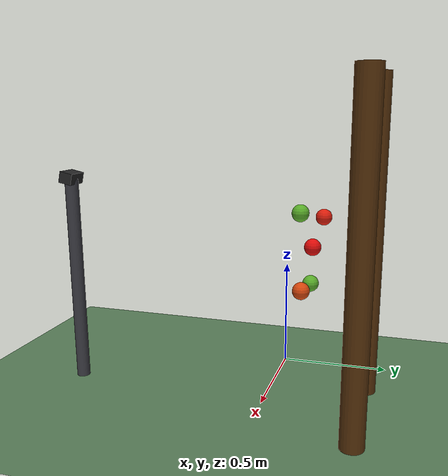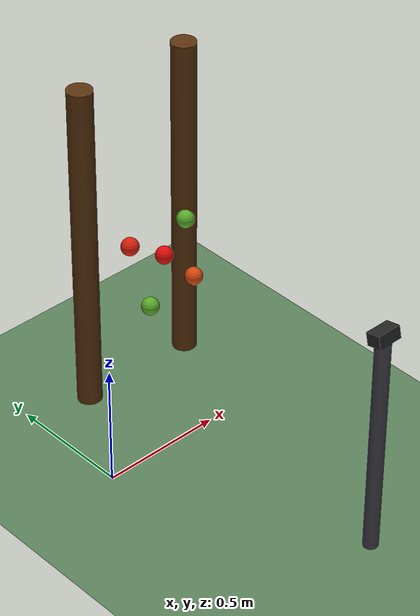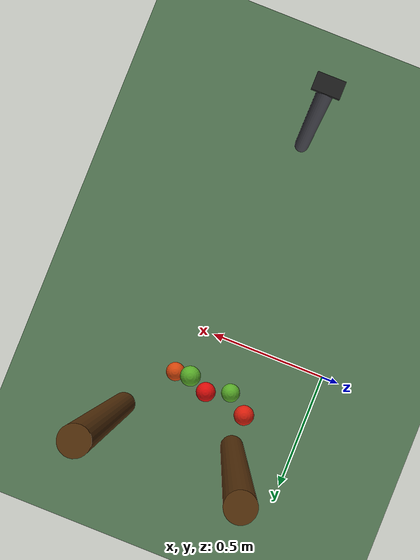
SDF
<?xml version="1.0" ?>
<sdf version="1.8">
  <world name="orchard">

    <physics name="1ms" type="ignored">
      <max_step_size>0.001</max_step_size>
      <real_time_factor>1.0</real_time_factor>
    </physics>

    <plugin filename="ignition-gazebo-physics-system"
            name="ignition::gazebo::systems::Physics"/>
    <plugin filename="ignition-gazebo-scene-broadcaster-system"
            name="ignition::gazebo::systems::SceneBroadcaster"/>
    <plugin filename="ignition-gazebo-user-commands-system"
            name="ignition::gazebo::systems::UserCommands"/>
    <plugin filename="ignition-gazebo-sensors-system"
            name="ignition::gazebo::systems::Sensors">
      <render_engine>ogre2</render_engine>
    </plugin>

    <scene>
      <ambient>0.5 0.5 0.5 1</ambient>
      <background>0.7 0.8 0.9 1</background>
    </scene>

    <light type="directional" name="sun">
      <cast_shadows>true</cast_shadows>
      <pose>0 0 10 0 0 0</pose>
      <diffuse>0.9 0.9 0.9 1</diffuse>
      <specular>0.2 0.2 0.2 1</specular>
      <direction>-0.3 0.5 -0.9</direction>
    </light>

    <model name="ground_plane">
      <static>true</static>
      <link name="link">
        <collision name="collision">
          <geometry><plane><normal>0 0 1</normal><size>50 50</size></plane></geometry>
        </collision>
        <visual name="visual">
          <geometry><plane><normal>0 0 1</normal><size>50 50</size></plane></geometry>
          <material>
            <ambient>0.3 0.45 0.3 1</ambient>
            <diffuse>0.35 0.5 0.35 1</diffuse>
          </material>
        </visual>
      </link>
    </model>

    <model name="camera_mast">
      <static>true</static>
      <pose>0.45 -0.9 0 0 0 0</pose>
      <link name="link">
        <visual name="pole">
          <pose>0 0 0.47 0 0 0</pose>
          <geometry><cylinder><radius>0.03</radius><length>0.95</length></cylinder></geometry>
          <material><ambient>0.2 0.2 0.22 1</ambient><diffuse>0.25 0.25 0.28 1</diffuse></material>
        </visual>
        <visual name="head">
          <pose>0 0 0.95 0 0.21 1.5708</pose>
          <geometry><box><size>0.06 0.10 0.05</size></box></geometry>
          <material><ambient>0.1 0.1 0.1 1</ambient><diffuse>0.15 0.15 0.15 1</diffuse></material>
        </visual>
        <sensor name="rgbd" type="rgbd_camera">
          <!-- gz camera frame: +x forward, +z up. yaw=90deg points it at +y. -->
          <pose>0 0 0.95 0 0.21 1.5708</pose>
          <!-- Stamp images/clouds with this frame so tf2 can place detections.
               A static transform base_link -> camera_optical_frame is published
               in perception.launch.py. -->
          <ignition_frame_id>camera_optical_frame</ignition_frame_id>
          <always_on>1</always_on>
          <update_rate>10</update_rate>
          <topic>camera</topic>
          <camera>
            <horizontal_fov>1.047</horizontal_fov>
            <image>
              <width>640</width>
              <height>480</height>
              <format>R8G8B8</format>
            </image>
            <clip><near>0.1</near><far>6.0</far></clip>
          </camera>
        </sensor>
      </link>
    </model>

    <!-- ===== Trellis posts (the "fruiting wall" backdrop / obstacles) ===== -->
    <model name="tree_trunk_1">
      <static>true</static>
      <pose>0.25 0.42 0.7 0 0 0</pose>
      <link name="link">
        <collision name="collision">
          <geometry><cylinder><radius>0.05</radius><length>1.4</length></cylinder></geometry>
        </collision>
        <visual name="visual">
          <geometry><cylinder><radius>0.05</radius><length>1.4</length></cylinder></geometry>
          <material><ambient>0.35 0.2 0.05 1</ambient><diffuse>0.35 0.2 0.05 1</diffuse></material>
        </visual>
      </link>
    </model>

    <model name="tree_trunk_2">
      <static>true</static>
      <pose>0.75 0.42 0.7 0 0 0</pose>
      <link name="link">
        <collision name="collision">
          <geometry><cylinder><radius>0.05</radius><length>1.4</length></cylinder></geometry>
        </collision>
        <visual name="visual">
          <geometry><cylinder><radius>0.05</radius><length>1.4</length></cylinder></geometry>
          <material><ambient>0.35 0.2 0.05 1</ambient><diffuse>0.35 0.2 0.05 1</diffuse></material>
        </visual>
      </link>
    </model>

    <model name="fruit_red_090">
      <static>true</static>
      <pose>0.45 0.20 0.70 0 0 0</pose>
      <link name="link">
        <collision name="collision"><geometry><sphere><radius>0.035</radius></sphere></geometry></collision>
        <visual name="visual">
          <geometry><sphere><radius>0.035</radius></sphere></geometry>
          <material><ambient>0.75 0.03 0.03 1</ambient><diffuse>0.88 0.05 0.04 1</diffuse></material>
        </visual>
      </link>
    </model>

    <model name="fruit_red_065">
      <static>true</static>
      <pose>0.58 0.18 0.55 0 0 0</pose>
      <link name="link">
        <collision name="collision"><geometry><sphere><radius>0.035</radius></sphere></geometry></collision>
        <visual name="visual">
          <geometry><sphere><radius>0.035</radius></sphere></geometry>
          <material><ambient>0.72 0.20 0.04 1</ambient><diffuse>0.85 0.28 0.05 1</diffuse></material>
        </visual>
      </link>
    </model>

    <model name="fruit_red_080">
      <static>true</static>
      <pose>0.30 0.22 0.80 0 0 0</pose>
      <link name="link">
        <collision name="collision"><geometry><sphere><radius>0.035</radius></sphere></geometry></collision>
        <visual name="visual">
          <geometry><sphere><radius>0.035</radius></sphere></geometry>
          <material><ambient>0.75 0.08 0.04 1</ambient><diffuse>0.87 0.12 0.05 1</diffuse></material>
        </visual>
      </link>
    </model>

    <model name="fruit_green_1">
      <static>true</static>
      <pose>0.52 0.16 0.85 0 0 0</pose>
      <link name="link">
        <collision name="collision"><geometry><sphere><radius>0.035</radius></sphere></geometry></collision>
        <visual name="visual">
          <geometry><sphere><radius>0.035</radius></sphere></geometry>
          <material><ambient>0.25 0.55 0.12 1</ambient><diffuse>0.35 0.68 0.16 1</diffuse></material>
        </visual>
      </link>
    </model>

    <model name="fruit_green_2">
      <static>true</static>
      <pose>0.36 0.18 0.52 0 0 0</pose>
      <link name="link">
        <collision name="collision"><geometry><sphere><radius>0.035</radius></sphere></geometry></collision>
        <visual name="visual">
          <geometry><sphere><radius>0.035</radius></sphere></geometry>
          <material><ambient>0.25 0.55 0.12 1</ambient><diffuse>0.35 0.68 0.16 1</diffuse></material>
        </visual>
      </link>
    </model>

  </world>
</sdf>
